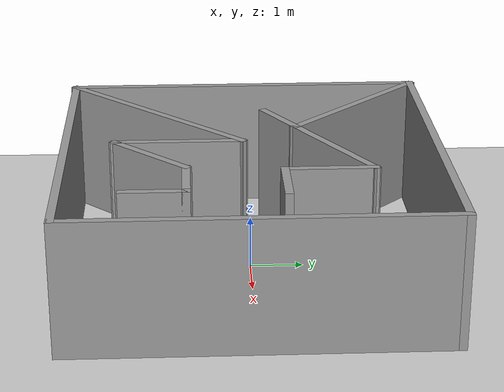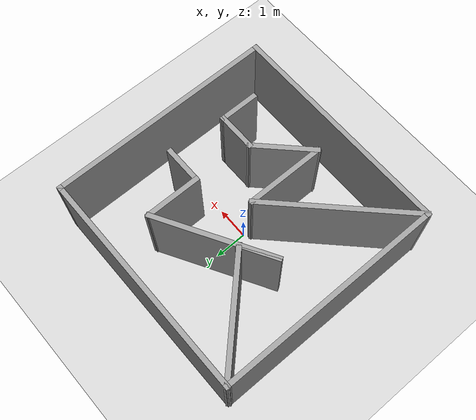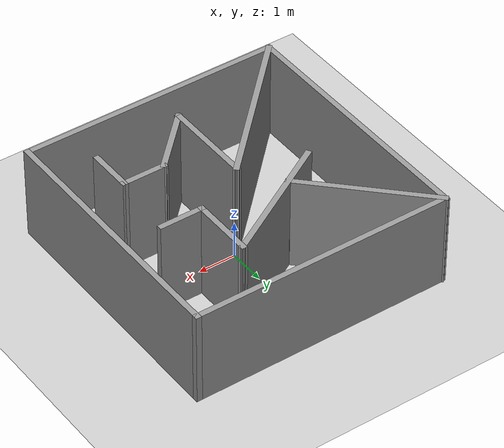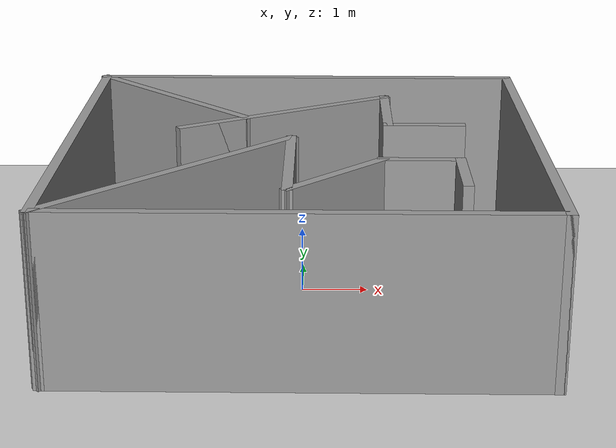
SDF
<sdf version="1.7">
 <world name="default">
  <light name="sun" type="directional">
   <pose>0 0 10 0 -0 0</pose>
   <diffuse>0.8 0.8 0.8 1</diffuse>
   <specular>0.2 0.2 0.2 1</specular>
   <attenuation>
    <range>1000</range>
    <constant>0.9</constant>
    <linear>0.01</linear>
    <quadratic>0.001</quadratic>
   </attenuation>
   <direction>-0.5 0.1 -0.9</direction>
   <spot><inner_angle>0</inner_angle><outer_angle>0</outer_angle><falloff>0</falloff></spot>
  </light>
  <model name="ground_plane">
   <static>1</static>
   <link name="link">
    <collision name="collision">
     <geometry><plane><normal>0 0 1</normal><size>100 100</size></plane></geometry>
     <surface>
      <contact><collide_bitmask>65535</collide_bitmask></contact>
      <friction><ode><mu>100</mu><mu2>50</mu2></ode></friction>
     </surface>
    </collision>
    <visual name="visual">
     <cast_shadows>0</cast_shadows>
     <geometry><plane><normal>0 0 1</normal><size>100 100</size></plane></geometry>
     <material>
      <script><uri>file://media/materials/scripts/gazebo.material</uri><name>Gazebo/Grey</name></script>
     </material>
    </visual>
   </link>
  </model>
  <gravity>0 0 -9.8</gravity>
  <magnetic_field>6e-06 2.3e-05 -4.2e-05</magnetic_field>
  <atmosphere type="adiabatic"/>
  <physics type="ode">
   <max_step_size>0.001</max_step_size>
   <real_time_factor>1</real_time_factor>
   <real_time_update_rate>1000</real_time_update_rate>
  </physics>
  <scene><ambient>0.4 0.4 0.4 1</ambient><background>0.7 0.7 0.7 1</background><shadows>1</shadows></scene>
  <spherical_coordinates>
   <surface_model>EARTH_WGS84</surface_model>
   <latitude_deg>0</latitude_deg>
   <longitude_deg>0</longitude_deg>
   <elevation>0</elevation>
   <heading_deg>0</heading_deg>
  </spherical_coordinates>
  <model name="ram">
   <pose>-0.007228 0.022544 0 0 -0 0</pose>
   <link name="Wall_0">
    <collision name="Wall_0_Collision">
     <geometry><box><size>7 0.15 2.5</size></box></geometry>
     <pose>0 0 1.25 0 -0 0</pose>
    </collision>
    <visual name="Wall_0_Visual">
     <pose>0 0 1.25 0 -0 0</pose>
     <geometry><box><size>7 0.15 2.5</size></box></geometry>
     <material>
      <script><uri>file://media/materials/scripts/gazebo.material</uri><name>Gazebo/Grey</name></script>
      <ambient>1 1 1 1</ambient>
     </material>
     <meta><layer>0</layer></meta>
    </visual>
    <pose>0.015533 -3.425 0 0 -0 0</pose>
   </link>
   <link name="Wall_1">
    <collision name="Wall_1_Collision">
     <geometry><box><size>7 0.15 2.5</size></box></geometry>
     <pose>0 0 1.25 0 -0 0</pose>
    </collision>
    <visual name="Wall_1_Visual">
     <pose>0 0 1.25 0 -0 0</pose>
     <geometry><box><size>7 0.15 2.5</size></box></geometry>
     <material>
      <script><uri>file://media/materials/scripts/gazebo.material</uri><name>Gazebo/Grey</name></script>
      <ambient>1 1 1 1</ambient>
     </material>
     <meta><layer>0</layer></meta>
    </visual>
    <pose>3.44053 0 0 0 -0 1.5708</pose>
   </link>
   <link name="Wall_10">
    <collision name="Wall_10_Collision">
     <geometry><box><size>3.75 0.15 2.5</size></box></geometry>
     <pose>0 0 1.25 0 -0 0</pose>
    </collision>
    <visual name="Wall_10_Visual">
     <pose>0 0 1.25 0 -0 0</pose>
     <geometry><box><size>3.75 0.15 2.5</size></box></geometry>
     <material>
      <script><uri>file://media/materials/scripts/gazebo.material</uri><name>Gazebo/Grey</name></script>
      <ambient>1 1 1 1</ambient>
     </material>
     <meta><layer>0</layer></meta>
    </visual>
    <pose>-2.13667 2.15221 0 0 -0 -0.785398</pose>
   </link>
   <link name="Wall_11">
    <collision name="Wall_11_Collision">
     <geometry><box><size>1.25 0.15 2.5</size></box></geometry>
     <pose>0 0 1.25 0 -0 0</pose>
    </collision>
    <visual name="Wall_11_Visual">
     <pose>0 0 1.25 0 -0 0</pose>
     <geometry><box><size>1.25 0.15 2.5</size></box></geometry>
     <material>
      <script><uri>file://media/materials/scripts/gazebo.material</uri><name>Gazebo/Grey</name></script>
      <ambient>1 1 1 1</ambient>
     </material>
     <meta><layer>0</layer></meta>
    </visual>
    <pose>-1.3402 0.604416 0 0 -0 -2.61799</pose>
   </link>
   <link name="Wall_12">
    <collision name="Wall_12_Collision">
     <geometry><box><size>3.75 0.15 2.5</size></box></geometry>
     <pose>0 0 1.25 0 -0 0</pose>
    </collision>
    <visual name="Wall_12_Visual">
     <pose>0 0 1.25 0 -0 0</pose>
     <geometry><box><size>3.75 0.15 2.5</size></box></geometry>
     <material>
      <script><uri>file://media/materials/scripts/gazebo.material</uri><name>Gazebo/Grey</name></script>
      <ambient>1 1 1 1</ambient>
     </material>
     <meta><layer>0</layer></meta>
    </visual>
    <pose>-0.257665 1.22942 0 0 -0 0.523599</pose>
   </link>
   <link name="Wall_13">
    <collision name="Wall_13_Collision">
     <geometry><box><size>1.75 0.15 2.5</size></box></geometry>
     <pose>0 0 1.25 0 -0 0</pose>
    </collision>
    <visual name="Wall_13_Visual">
     <pose>0 0 1.25 0 -0 0</pose>
     <geometry><box><size>1.75 0.15 2.5</size></box></geometry>
     <material>
      <script><uri>file://media/materials/scripts/gazebo.material</uri><name>Gazebo/Grey</name></script>
      <ambient>1 1 1 1</ambient>
     </material>
     <meta><layer>0</layer></meta>
    </visual>
    <pose>1.30118 1.32942 0 0 -0 -1.5708</pose>
   </link>
   <link name="Wall_14">
    <collision name="Wall_14_Collision">
     <geometry><box><size>1.25 0.15 2.5</size></box></geometry>
     <pose>0 0 1.25 0 -0 0</pose>
    </collision>
    <visual name="Wall_14_Visual">
     <pose>0 0 1.25 0 -0 0</pose>
     <geometry><box><size>1.25 0.15 2.5</size></box></geometry>
     <material>
      <script><uri>file://media/materials/scripts/gazebo.material</uri><name>Gazebo/Grey</name></script>
      <ambient>1 1 1 1</ambient>
     </material>
     <meta><layer>0</layer></meta>
    </visual>
    <pose>1.85118 0.529416 0 0 -0 0</pose>
   </link>
   <link name="Wall_2">
    <collision name="Wall_2_Collision">
     <geometry><box><size>7 0.15 2.5</size></box></geometry>
     <pose>0 0 1.25 0 -0 0</pose>
    </collision>
    <visual name="Wall_2_Visual">
     <pose>0 0 1.25 0 -0 0</pose>
     <geometry><box><size>7 0.15 2.5</size></box></geometry>
     <material>
      <script><uri>file://media/materials/scripts/gazebo.material</uri><name>Gazebo/Grey</name></script>
      <ambient>1 1 1 1</ambient>
     </material>
     <meta><layer>0</layer></meta>
    </visual>
    <pose>0.015533 3.425 0 0 -0 3.14159</pose>
   </link>
   <link name="Wall_3">
    <collision name="Wall_3_Collision">
     <geometry><box><size>7 0.15 2.5</size></box></geometry>
     <pose>0 0 1.25 0 -0 0</pose>
    </collision>
    <visual name="Wall_3_Visual">
     <pose>0 0 1.25 0 -0 0</pose>
     <geometry><box><size>7 0.15 2.5</size></box></geometry>
     <material>
      <script><uri>file://media/materials/scripts/gazebo.material</uri><name>Gazebo/Grey</name></script>
      <ambient>1 1 1 1</ambient>
     </material>
     <meta><layer>0</layer></meta>
    </visual>
    <pose>-3.40947 0 0 0 -0 -1.5708</pose>
   </link>
   <link name="Wall_4">
    <collision name="Wall_4_Collision">
     <geometry><box><size>4.75 0.15 2.5</size></box></geometry>
     <pose>0 0 1.25 0 -0 0</pose>
    </collision>
    <visual name="Wall_4_Visual">
     <pose>0 0 1.25 0 -0 0</pose>
     <geometry><box><size>4.75 0.15 2.5</size></box></geometry>
     <material>
      <script><uri>file://media/materials/scripts/gazebo.material</uri><name>Gazebo/Grey</name></script>
      <ambient>1 1 1 1</ambient>
     </material>
     <meta><layer>0</layer></meta>
    </visual>
    <pose>-1.78312 -1.79865 0 0 -0 0.785398</pose>
   </link>
   <link name="Wall_5">
    <collision name="Wall_5_Collision">
     <geometry><box><size>2.5 0.15 2.5</size></box></geometry>
     <pose>0 0 1.25 0 -0 0</pose>
    </collision>
    <visual name="Wall_5_Visual">
     <pose>0 0 1.25 0 -0 0</pose>
     <geometry><box><size>2.5 0.15 2.5</size></box></geometry>
     <material>
      <script><uri>file://media/materials/scripts/gazebo.material</uri><name>Gazebo/Grey</name></script>
      <ambient>1 1 1 1</ambient>
     </material>
     <meta><layer>0</layer></meta>
    </visual>
    <pose>-0.156776 -1.34731 0 0 -0 -1.5708</pose>
   </link>
   <link name="Wall_6">
    <collision name="Wall_6_Collision">
     <geometry><box><size>2 0.15 2.5</size></box></geometry>
     <pose>0 0 1.25 0 -0 0</pose>
    </collision>
    <visual name="Wall_6_Visual">
     <pose>0 0 1.25 0 -0 0</pose>
     <geometry><box><size>2 0.15 2.5</size></box></geometry>
     <material>
      <script><uri>file://media/materials/scripts/gazebo.material</uri><name>Gazebo/Grey</name></script>
      <ambient>1 1 1 1</ambient>
     </material>
     <meta><layer>0</layer></meta>
    </visual>
    <pose>0.497298 -1.86824 0 0 -0 0.785398</pose>
   </link>
   <link name="Wall_7">
    <collision name="Wall_7_Collision">
     <geometry><box><size>1.25 0.15 2.5</size></box></geometry>
     <pose>0 0 1.25 0 -0 0</pose>
    </collision>
    <visual name="Wall_7_Visual">
     <pose>0 0 1.25 0 -0 0</pose>
     <geometry><box><size>1.25 0.15 2.5</size></box></geometry>
     <material>
      <script><uri>file://media/materials/scripts/gazebo.material</uri><name>Gazebo/Grey</name></script>
      <ambient>1 1 1 1</ambient>
     </material>
     <meta><layer>0</layer></meta>
    </visual>
    <pose>1.70137 -1.21416 0 0 -0 0</pose>
   </link>
   <link name="Wall_8">
    <collision name="Wall_8_Collision">
     <geometry><box><size>1.25 0.15 2.5</size></box></geometry>
     <pose>0 0 1.25 0 -0 0</pose>
    </collision>
    <visual name="Wall_8_Visual">
     <pose>0 0 1.25 0 -0 0</pose>
     <geometry><box><size>1.25 0.15 2.5</size></box></geometry>
     <material>
      <script><uri>file://media/materials/scripts/gazebo.material</uri><name>Gazebo/Grey</name></script>
      <ambient>1 1 1 1</ambient>
     </material>
     <meta><layer>0</layer></meta>
    </visual>
    <pose>2.25137 -1.76416 0 0 -0 -1.5708</pose>
   </link>
   <static>1</static>
  </model>
 </world>
</sdf>
